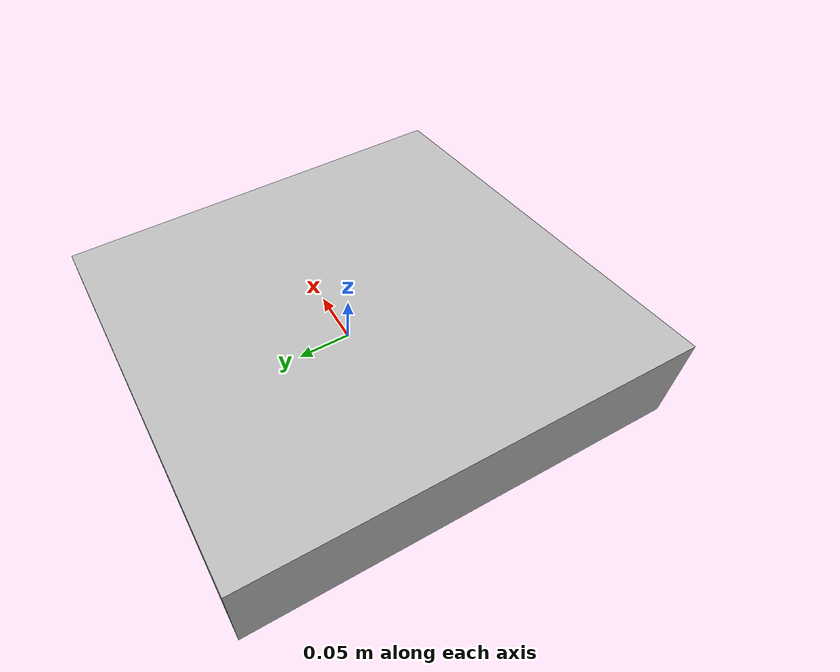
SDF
<?xml version="1.0" ?>
<sdf version="1.4">
  <model name="Y_positive_10_lifted">
    <link name="link">
      <pose>0 0 0 0 0 0</pose>
      <collision name="collision">
        <geometry>
          <mesh>
            <uri>model://Y_positive_10_lifted/meshes/10_degree_slope_lifted.stl</uri>
            <scale>0.00999 0.00999 0.00999</scale>
          </mesh>
        </geometry>
      </collision>
      <visual name="visual">
        <geometry>
          <mesh>
            <uri>model://Y_positive_10_lifted/meshes/10_degree_slope_lifted.stl</uri>
            <scale>0.00999 0.00999 0.00999</scale>
          </mesh>
        </geometry>
      </visual>
    </link>
  </model>
</sdf>
